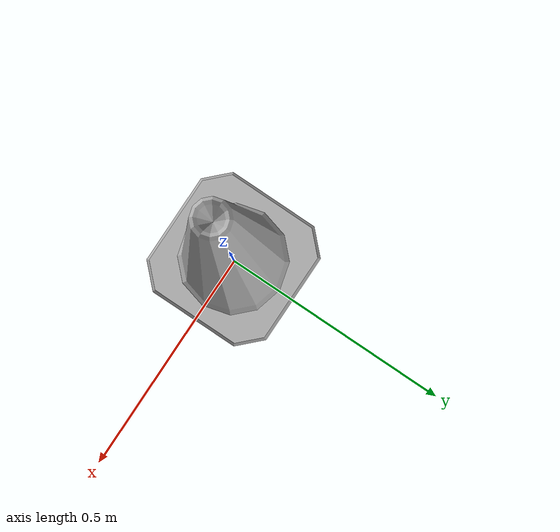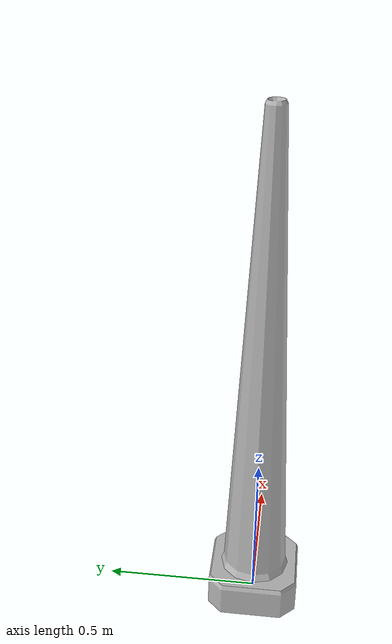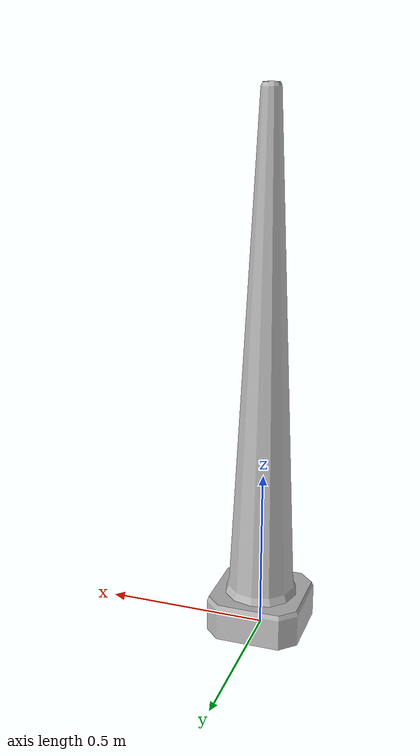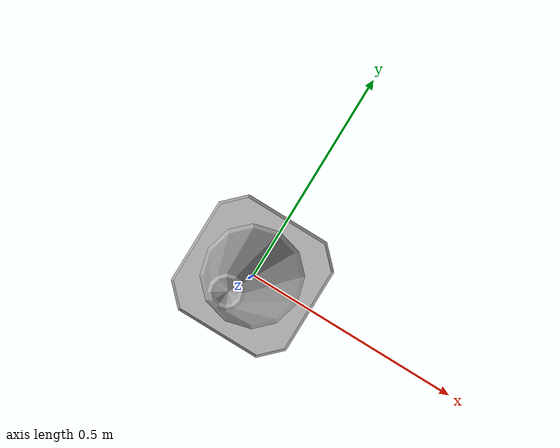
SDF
<sdf version="1.5">
  <model name="construction_cone2">
    <link name="link">
      <collision name="collision">
        <geometry>
          <mesh>
            <scale>5.777582111996454 5.777582111996454 15.153057552727345</scale>
            <uri>model://construction_cone/meshes/construction_cone.dae</uri>
          </mesh>
        </geometry>
      </collision>
      <visual name="visual">
        <geometry>
          <mesh>
            <scale>5.777582111996454 5.777582111996454 15.153057552727345</scale>
            <uri>model://construction_cone/meshes/construction_cone.dae</uri>
          </mesh>
        </geometry>
      </visual>
    </link>
  </model>
</sdf>
